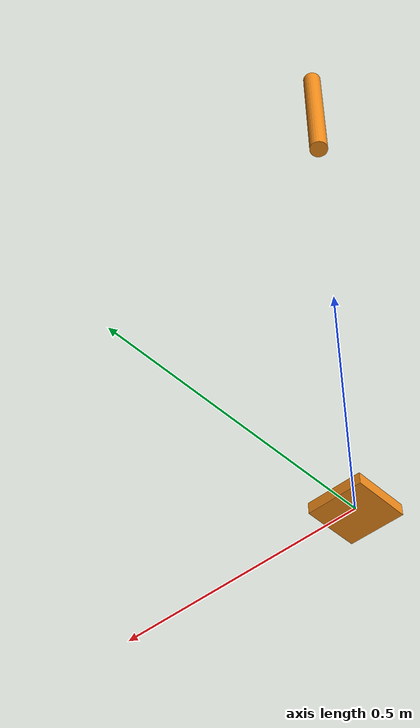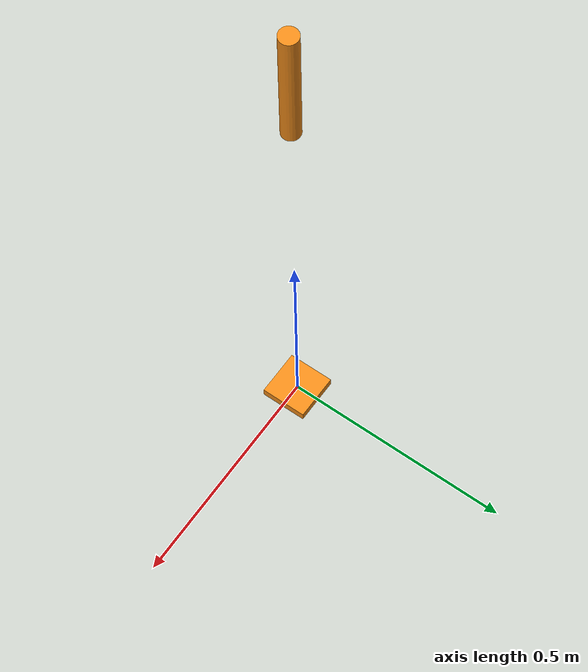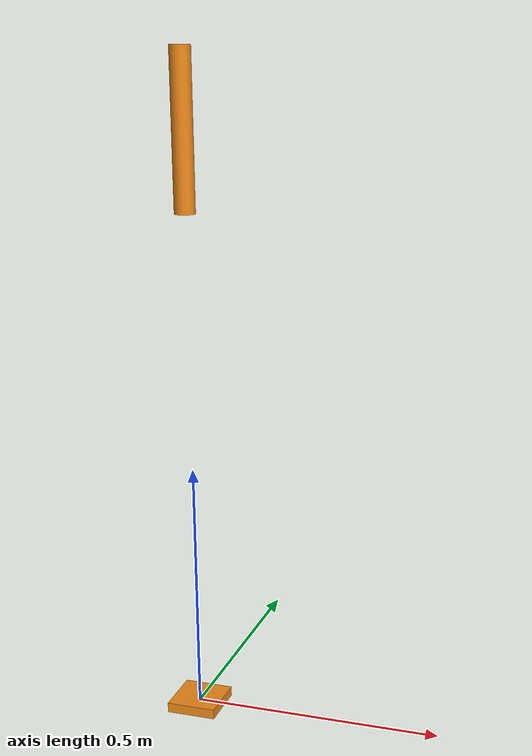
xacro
<?xml version="1.0"?>

<robot xmlns:xacro="http://www.ros.org/wiki/xacro">

    <link name="base_footprint" />

    <link name="arm_base_link">
        <visual>
            <geometry>
                <box size="0.1 0.1 0.02" />
            </geometry>
            <origin xyz="0 0 0" rpy="0 0 0" />
            <material name="orange" />
        </visual>
        <collision>
            <geometry>
                <box size="0.1 0.1 0.02" />
            </geometry>
            <origin xyz="0 0 0" rpy="0 0 0" />
            <material name="orange" />
        </collision>
        <xacro:box_inertia m="0.5" l="0.1" w="0.1" h="0.02"
                           xyz="0 0 0" rpy="0 0 0" />
    </link>

    <link name="forearm_link">
        <visual>
            <geometry>
                <cylinder radius="0.02" length="0.3" />
            </geometry>
            <origin xyz="0 0 0.15" rpy="0 0 0" />
            <material name="orange" />
        </visual>
        <collision>
            <geometry>
                <cylinder radius="0.02" length="0.3" />
            </geometry>
            <origin xyz="0 0 0.15" rpy="0 0 0" />
            <material name="orange" />
        </collision>
        <xacro:cylinder_inertia m="0.3" r="0.02" l="0.3"
                           xyz="0 0 0" rpy="0 0 0" />
    </link>

    <joint name="arm_base_link_base_footprint_joint" type="fixed">
        <parent link="base_footprint" />
        <child link="arm_base_link" />
        <origin xyz="0 0 0" rpy="0 0 0"/>
    </joint>

    <joint name="forearm_base_joint" type="revolute">
        <parent link="arm_base_link" />
        <child link="forearm_link" />
        <origin xyz="0 0 1" rpy="0 0 0"/>
        <axis xyz="1 0 0" />
        <limit lower="${-pi/2}" upper="${pi/2}" effort="10" velocity="10" />
    </joint>

</robot>
